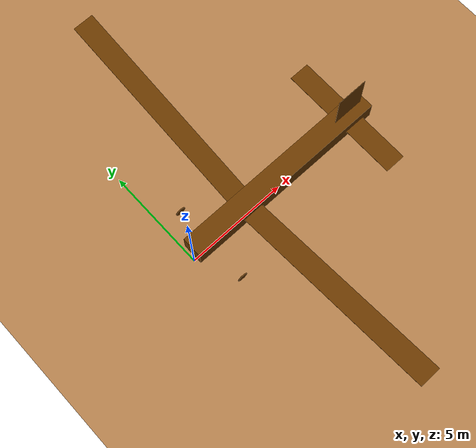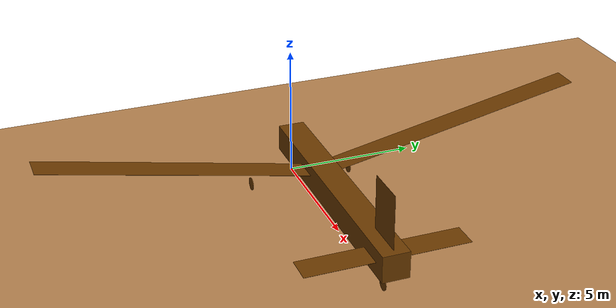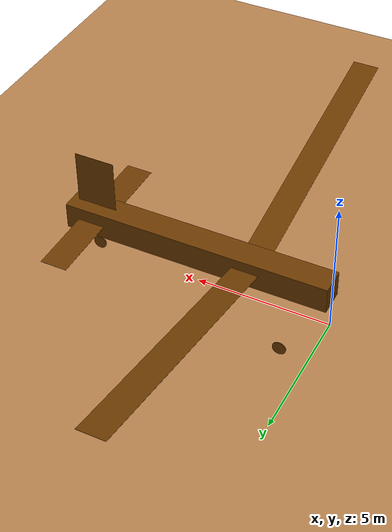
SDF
<?xml version="1.0" ?>
<sdf version="1.4">
  <world name="default">
    <gui>
      <camera name="user_camera">
        <pose>20 0 3 0 0 3.141592</pose>
      </camera>
    </gui>
    <physics type="ode">
      <gravity>0.0 0.0 -10.00</gravity>
      <ode>
        <solver>
          <type>quick</type>
          <iters>100</iters>
          <sor>0.8</sor>
        </solver>
        <constraints>
          <cfm>0.0</cfm>
          <erp>0.2</erp>
          <contact_max_correcting_vel>0.1</contact_max_correcting_vel>
          <contact_surface_layer>0.0</contact_surface_layer>
        </constraints>
      </ode>
      <real_time_update_rate>1000</real_time_update_rate>
      <max_step_size>0.001</max_step_size>
    </physics>
    <include>
      <uri>model://sun</uri>
    </include>

    <spherical_coordinates>
      <latitude_deg>43.530824</latitude_deg>
      <longitude_deg>-80.577673</longitude_deg>
      <heading_deg>0</heading_deg>
    </spherical_coordinates>

    <model name="ground_plane">
      <static>true</static>
      <link name="link">
        <collision name="collision">
          <geometry>
            <plane>
              <normal>0 0 1</normal>
              <size>10000 10000</size>
            </plane>
          </geometry>
          <surface>
            <friction>
              <ode>
                <mu>1</mu>
                <mu2>1</mu2>
              </ode>
            </friction>
          </surface>
        </collision>
        <visual name="visual">
          <cast_shadows>false</cast_shadows>
          <geometry>
            <plane>
              <normal>0 0 1</normal>
              <size>10000 10000</size>
            </plane>
          </geometry>
          <material>
            <script>
              <uri>file://media/materials/scripts/gazebo.material</uri>
              <name>Gazebo/WoodFloor</name>
            </script>
          </material>
        </visual>
      </link>
    </model>

    <model name="lift_drag_demo_model">
      <pose>0 0 0 0 0 0</pose>
      <static>false</static>
      <link name="body">
        <pose>5.0 0 1.5 0 0 0</pose>
        <inertial>
          <pose>-1.5 0.0 0.0 0.0 0.0 0.0</pose>
          <inertia>
            <ixx>5.8</ixx>
            <ixy>0.0</ixy>
            <ixz>0.0</ixz>
            <iyy>10.8</iyy>
            <iyz>0.0</iyz>
            <izz>10.8</izz>
          </inertia>
          <mass>200.0</mass>
        </inertial>
        <collision name="collision">
          <geometry>
            <box>
              <size>10 1 1</size>
            </box>
          </geometry>
          <surface>
            <friction>
              <ode>
                <mu>0.3</mu>
                <mu2>0.3</mu2>
              </ode>
            </friction>
          </surface>
        </collision>
        <visual name="visual">
          <geometry>
            <box>
              <size>10 1 1</size>
            </box>
          </geometry>
          <material>
            <ambient>0.2 0.2 0.2 1.0</ambient>
            <diffuse>.421 0.225 0.0 1.0</diffuse>
          </material>
        </visual>
        <sensor name="camera" type="camera">
          <pose>18 0 0.0 0 0.0 3.1416</pose>
          <camera>
            <horizontal_fov>1.347</horizontal_fov>
            <image>
              <width>640</width>
              <height>480</height>
            </image>
            <clip>
              <near>0.1</near>
              <far>1000</far>
            </clip>
          </camera>
          <always_on>1</always_on>
          <update_rate>30</update_rate>
          <visualize>true</visualize>
        </sensor>
        <sensor name="camera_wide" type="camera">
          <pose>16 0 2.0 0 0.3 3.1416</pose>
          <camera>
            <horizontal_fov>2.0</horizontal_fov>
            <image>
              <width>640</width>
              <height>480</height>
            </image>
            <clip>
              <near>0.1</near>
              <far>1000</far>
            </clip>
          </camera>
          <always_on>1</always_on>
          <update_rate>30</update_rate>
          <visualize>true</visualize>
        </sensor>
        <sensor name='Vilma_IMU' type='imu'>
          <pose>0 0.000000 0.5 0.000000 -0.000000 0.000000</pose>
          <imu>
            <topic>__default_topic__</topic>
          </imu>
          <always_on>1</always_on>
          <update_rate>30</update_rate>
        </sensor>
        <sensor name='gps' type='gps'>
          <pose>0 0.000000 0.5 0.000000 -0.000000 0.000000</pose>
          <gps>
            <topic>__default_topic__</topic>
          </gps>
          <always_on>1</always_on>
          <update_rate>30</update_rate>
        </sensor>
      </link>
      <link name="wheel_1">
        <pose>9.0 0 0.25 1.57079 0 0</pose>
        <inertial>
          <pose>0.0 0.0 0.0 0.0 0.0 0.0</pose>
          <inertia>
            <ixx>0.8</ixx>
            <ixy>0.0</ixy>
            <ixz>0.0</ixz>
            <iyy>0.8</iyy>
            <iyz>0.0</iyz>
            <izz>0.8</izz>
          </inertia>
          <mass>10.0</mass>
        </inertial>
        <collision name="collision">
          <geometry>
            <cylinder>
              <radius>0.25</radius>
              <length>0.03</length>
            </cylinder>
          </geometry>
          <surface>
            <friction>
              <ode>
                <mu>0.3</mu>
                <mu2>0.3</mu2>
              </ode>
            </friction>
          </surface>
        </collision>
        <visual name="visual">
          <geometry>
            <cylinder>
              <radius>0.25</radius>
              <length>0.03</length>
            </cylinder>
          </geometry>
          <material>
            <ambient>0.2 0.2 0.2 1.0</ambient>
            <diffuse>.421 0.225 0.0 1.0</diffuse>
          </material>
        </visual>
      </link>
      <link name="wheel_2">
        <pose>1.0 -2.0 0.25 1.57079 0 0</pose>
        <inertial>
          <pose>0.0 0.0 0.0 0.0 0.0 0.0</pose>
          <inertia>
            <ixx>0.8</ixx>
            <ixy>0.0</ixy>
            <ixz>0.0</ixz>
            <iyy>0.8</iyy>
            <iyz>0.0</iyz>
            <izz>0.8</izz>
          </inertia>
          <mass>10.0</mass>
        </inertial>
        <collision name="collision">
          <geometry>
            <cylinder>
              <radius>0.25</radius>
              <length>0.03</length>
            </cylinder>
          </geometry>
          <surface>
            <friction>
              <ode>
                <mu>0.3</mu>
                <mu2>0.3</mu2>
              </ode>
            </friction>
          </surface>
        </collision>
        <visual name="visual">
          <geometry>
            <cylinder>
              <radius>0.25</radius>
              <length>0.03</length>
            </cylinder>
          </geometry>
          <material>
            <ambient>0.2 0.2 0.2 1.0</ambient>
            <diffuse>.421 0.225 0.0 1.0</diffuse>
          </material>
        </visual>
      </link>
      <link name="wheel_3">
        <pose>1.0 2.0 0.25 1.57079 0 0</pose>
        <inertial>
          <pose>0.0 0.0 0.0 0.0 0.0 0.0</pose>
          <inertia>
            <ixx>0.8</ixx>
            <ixy>0.0</ixy>
            <ixz>0.0</ixz>
            <iyy>0.8</iyy>
            <iyz>0.0</iyz>
            <izz>0.8</izz>
          </inertia>
          <mass>10.0</mass>
        </inertial>
        <collision name="collision">
          <geometry>
            <cylinder>
              <radius>0.25</radius>
              <length>0.03</length>
            </cylinder>
          </geometry>
          <surface>
            <friction>
              <ode>
                <mu>0.3</mu>
                <mu2>0.3</mu2>
              </ode>
            </friction>
          </surface>
        </collision>
        <visual name="visual">
          <geometry>
            <cylinder>
              <radius>0.25</radius>
              <length>0.03</length>
            </cylinder>
          </geometry>
          <material>
            <ambient>0.2 0.2 0.2 1.0</ambient>
            <diffuse>.421 0.225 0.0 1.0</diffuse>
          </material>
        </visual>
      </link>

      <joint name="wheel_1_joint" type="revolute">
        <parent>body</parent>
        <child>wheel_1</child>
        <pose>0.0 0.0 0.0 0.0 0.0 0.0</pose>
        <axis>
          <limit>
            <lower>-1e16</lower>
            <upper>1e16</upper>
          </limit>
          <xyz>0.0 1.0 0.0</xyz>
          <dynamics>
            <damping>0.0001</damping>
          </dynamics>
        </axis>
        <physics>
          <ode>
            <implicit_spring_damper>1</implicit_spring_damper>
          </ode>
        </physics>
      </joint>
      <joint name="wheel_2_joint" type="revolute">
        <parent>body</parent>
        <child>wheel_2</child>
        <pose>0.0 0.0 0.0 0.0 0.0 0.0</pose>
        <axis>
          <limit>
            <lower>-1e16</lower>
            <upper>1e16</upper>
          </limit>
          <xyz>0.0 1.0 0.0</xyz>
          <dynamics>
            <damping>0.0001</damping>
          </dynamics>
        </axis>
        <physics>
          <ode>
            <implicit_spring_damper>1</implicit_spring_damper>
          </ode>
        </physics>
      </joint>
      <joint name="wheel_3_joint" type="revolute">
        <parent>body</parent>
        <child>wheel_3</child>
        <pose>0.0 0.0 0.0 0.0 0.0 0.0</pose>
        <axis>
          <limit>
            <lower>-1e16</lower>
            <upper>1e16</upper>
          </limit>
          <xyz>0.0 1.0 0.0</xyz>
          <dynamics>
            <damping>0.0001</damping>
          </dynamics>
        </axis>
        <physics>
          <ode>
            <implicit_spring_damper>1</implicit_spring_damper>
          </ode>
        </physics>
      </joint>

      <link name="wing_right">
        <pose>3 0 1.5 0.2 0 0</pose>
        <inertial>
          <pose>0.0 5.5 0 0.0 0.0 0.0</pose>
          <inertia>
            <ixx>0.465</ixx>
            <ixy>0.0</ixy>
            <ixz>0.0</ixz>
            <iyy>0.006</iyy>
            <iyz>0.0</iyz>
            <izz>0.470</izz>
          </inertia>
          <mass>10.0</mass>
        </inertial>
        <collision name="collision">
          <pose>0.0 5.5 0 0.0 0.0 0.0</pose>
          <geometry>
            <box>
              <size>1.0 10.0 0.01</size>
            </box>
          </geometry>
        </collision>
        <visual name="visual">
          <pose>0.0 5.5 0 0.0 0.0 0.0</pose>
          <geometry>
            <box>
              <size>1.0 10.0 0.01</size>
            </box>
          </geometry>
          <material>
            <ambient>0.5 0.2 0.2 1.0</ambient>
            <diffuse>.421 0.225 0.0 1.0</diffuse>
          </material>
        </visual>
      </link>
      <link name="wing_left">
        <pose>3 0 1.5 -0.2 0 0</pose>
        <inertial>
          <pose>0.0 -5.5 0 0.0 0.0 0.0</pose>
          <inertia>
            <ixx>0.465</ixx>
            <ixy>0.0</ixy>
            <ixz>0.0</ixz>
            <iyy>0.006</iyy>
            <iyz>0.0</iyz>
            <izz>0.470</izz>
          </inertia>
          <mass>10.0</mass>
        </inertial>
        <collision name="collision">
          <pose>0.0 -5.5 0 0.0 0.0 0.0</pose>
          <geometry>
            <box>
              <size>1.0 10.0 0.01</size>
            </box>
          </geometry>
        </collision>
        <visual name="visual">
          <pose>0.0 -5.5 0 0.0 0.0 0</pose>
          <geometry>
            <box>
              <size>1.0 10.0 0.01</size>
            </box>
          </geometry>
          <material>
            <ambient>0.2 0.5 0.2 1.0</ambient>
            <diffuse>.421 0.225 0.0 1.0</diffuse>
          </material>
        </visual>
      </link>
      <joint name="wing_right_joint" type="revolute">
        <parent>body</parent>
        <child>wing_right</child>
        <pose>0.0 0.0 0.0 0.0 0.0 0.0</pose>
        <axis>
          <limit>
            <lower>-0.3</lower>
            <upper>0.3</upper>
          </limit>
          <xyz>0.0 0.98 0.198669</xyz>
          <dynamics>
            <damping>5.000000</damping>
          </dynamics>
        </axis>
        <physics>
          <ode>
            <implicit_spring_damper>1</implicit_spring_damper>
          </ode>
        </physics>
      </joint>
      <joint name="wing_left_joint" type="revolute">
        <parent>body</parent>
        <child>wing_left</child>
        <pose>0.0 0.0 0.0 0.0 0.0 0.0</pose>
        <axis>
          <limit>
            <lower>-0.3</lower>
            <upper>0.3</upper>
          </limit>
          <xyz>0.0 -0.98 0.198669</xyz>
          <dynamics>
            <damping>5.000000</damping>
          </dynamics>
        </axis>
        <physics>
          <ode>
            <implicit_spring_damper>1</implicit_spring_damper>
          </ode>
        </physics>
      </joint>

      <link name="elevator">
        <pose>9 0 1.5 0 0 0</pose>
        <inertial>
          <pose>0.0 0.0 0 0.0 0.0 0.0</pose>
          <inertia>
            <ixx>0.0465</ixx>
            <ixy>0.0</ixy>
            <ixz>0.0</ixz>
            <iyy>0.0006</iyy>
            <iyz>0.0</iyz>
            <izz>0.0470</izz>
          </inertia>
          <mass>4.0</mass>
        </inertial>
        <collision name="collision">
          <pose>0.0 0.0 0 0.0 0.0 0.0</pose>
          <geometry>
            <box>
              <size>1.0 6.0 0.01</size>
            </box>
          </geometry>
        </collision>
        <visual name="visual">
          <pose>0.0 0.0 0 0.0 0.0 0.0</pose>
          <geometry>
            <box>
              <size>1.0 6.0 0.01</size>
            </box>
          </geometry>
          <material>
            <ambient>0.5 0.2 0.2 1.0</ambient>
            <diffuse>.421 0.225 0.0 1.0</diffuse>
          </material>
        </visual>
      </link>
      <joint name="elevator_joint" type="revolute">
        <parent>body</parent>
        <child>elevator</child>
        <pose>0.0 0.0 0.0 0.0 0.0 0.0</pose>
        <axis>
          <limit>
            <lower>-0.5</lower>
            <upper>0.5</upper>
          </limit>
          <xyz>0.0 1.0 0.0</xyz>
          <dynamics>
            <damping>5.000000</damping>
          </dynamics>
        </axis>
        <physics>
          <ode>
            <implicit_spring_damper>1</implicit_spring_damper>
          </ode>
        </physics>
      </joint>

      <link name="rudder">
        <pose>9 0 2.0 0 0 0</pose>
        <inertial>
          <pose>0.0 0 1 0.0 0.0 0.0</pose>
          <inertia>
            <ixx>0.0465</ixx>
            <ixy>0.0</ixy>
            <ixz>0.0</ixz>
            <iyy>0.0006</iyy>
            <iyz>0.0</iyz>
            <izz>0.0470</izz>
          </inertia>
          <mass>2.0</mass>
        </inertial>
        <collision name="collision">
          <pose>0.0 0 1 0.0 0.0 0.0</pose>
          <geometry>
            <box>
              <size>1.5 0.01 2.0</size>
            </box>
          </geometry>
        </collision>
        <visual name="visual">
          <pose>0.0 0 1 0.0 0.0 0</pose>
          <geometry>
            <box>
              <size>1.5 0.01 2.0</size>
            </box>
          </geometry>
          <material>
            <ambient>0.2 0.5 0.2 1.0</ambient>
            <diffuse>.421 0.225 0.0 1.0</diffuse>
          </material>
        </visual>
      </link>
      <joint name="rudder_joint" type="revolute">
        <parent>body</parent>
        <child>rudder</child>
        <pose>0.0 0.0 0.0 0.0 0.0 0.0</pose>
        <axis>
          <limit>
            <lower>-0.3</lower>
            <upper>0.3</upper>
          </limit>
          <xyz>0.0 0.0 1.0</xyz>
          <dynamics>
            <damping>5.000000</damping>
          </dynamics>
        </axis>
        <physics>
          <ode>
            <implicit_spring_damper>1</implicit_spring_damper>
          </ode>
        </physics>
      </joint>

      <plugin name="gazebo_wing_right" filename="libLiftDragPlugin.so">
        <a0>0.1</a0>
        <cla>4.000</cla>
        <cda>0.001</cda>
        <cma>0.00</cma>
        <alpha_stall>1.0</alpha_stall>
        <cla_stall>-1.0</cla_stall>
        <cda_stall>0.00</cda_stall>
        <cma_stall>0.0</cma_stall>
        <cp>0.0 5.0 0</cp>
        <area>10</area>
        <air_density>1.2041</air_density>
        <forward>-1 0 0</forward>
        <upward>0 0 1</upward>
        <link_name>lift_drag_demo_model::wing_right</link_name>
      </plugin>
      <plugin name="gazebo_wing_left" filename="libLiftDragPlugin.so">
        <a0>0.1</a0>
        <cla>4.000</cla>
        <cda>0.001</cda>
        <cma>0.00</cma>
        <alpha_stall>1.0</alpha_stall>
        <cla_stall>-1.0</cla_stall>
        <cda_stall>0.0</cda_stall>
        <cma_stall>0.0</cma_stall>
        <cp>0.0 -5.0 0</cp>
        <area>10</area>
        <air_density>1.2041</air_density>
        <forward>-1 0 0</forward>
        <upward>0 0 1</upward>
        <link_name>lift_drag_demo_model::wing_left</link_name>
      </plugin>
      <plugin name="gazebo_elevator_right" filename="libLiftDragPlugin.so">
        <a0>0.02</a0>
        <cla>4.000</cla>
        <cda>0.001</cda>
        <cma>0.00</cma>
        <alpha_stall>1.0</alpha_stall>
        <cla_stall>-1.0</cla_stall>
        <cda_stall>0.0</cda_stall>
        <cma_stall>0.0</cma_stall>
        <cp>0.0 1.5 0</cp>
        <area>3</area>
        <air_density>1.2041</air_density>
        <forward>-1 0 0</forward>
        <upward>0 0 1</upward>
        <link_name>lift_drag_demo_model::elevator</link_name>
      </plugin>
      <plugin name="gazebo_elevator_left" filename="libLiftDragPlugin.so">
        <a0>0.02</a0>
        <cla>4.000</cla>
        <cda>0.001</cda>
        <cma>0.00</cma>
        <alpha_stall>1.0</alpha_stall>
        <cla_stall>-1.0</cla_stall>
        <cda_stall>0.0</cda_stall>
        <cma_stall>0.0</cma_stall>
        <cp>0.0 -1.5 0</cp>
        <area>3</area>
        <air_density>1.2041</air_density>
        <forward>-1 0 0</forward>
        <upward>0 0 1</upward>
        <link_name>lift_drag_demo_model::elevator</link_name>
      </plugin>
      <plugin name="gazebo_rudder" filename="libLiftDragPlugin.so">
        <!-- force turn -->
        <a0>0.00</a0>
        <cla>2.000</cla>
        <cda>0.001</cda>
        <cma>0.00</cma>
        <alpha_stall>1.0</alpha_stall>
        <cla_stall>-1.0</cla_stall>
        <cda_stall>0.0</cda_stall>
        <cma_stall>0.0</cma_stall>
        <cp>0.0 0 1</cp>
        <area>3</area>
        <air_density>1.2041</air_density>
        <forward>-1 0 0</forward>
        <upward>0 -1 0</upward>
        <link_name>lift_drag_demo_model::rudder</link_name>
      </plugin>
      <plugin name="plane_demo_plugin" filename="libPlaneDemoPlugin.so">
        <thruster name="thruster1">
          <link_name>body</link_name>
          <inc_key>97</inc_key>
          <dec_key>122</dec_key>
          <inc_val>-50 0 0</inc_val>
        </thruster>
        <control name="wing_left_control">
          <joint_name>wing_left_joint</joint_name>
          <inc_key>67</inc_key>
          <inc_val>-0.02</inc_val>
          <dec_key>68</dec_key>
          <p>1000</p>
          <i>0</i>
          <d>0</d>
        </control>
        <control name="wing_right_control">
          <joint_name>wing_right_joint</joint_name>
          <inc_key>68</inc_key>
          <inc_val>0.02</inc_val>
          <dec_key>67</dec_key>
          <p>1000</p>
          <i>0</i>
          <d>0</d>
        </control>
        <control name="elevator_control">
          <joint_name>elevator_joint</joint_name>
          <inc_key>65</inc_key>
          <inc_val>0.02</inc_val>
          <dec_key>66</dec_key>
          <p>100</p>
          <i>0</i>
          <d>0</d>
        </control>
        <control name="rudder_control">
          <joint_name>rudder_joint</joint_name>
          <inc_key>119</inc_key>
          <inc_val>0.02</inc_val>
          <dec_key>113</dec_key>
          <p>100</p>
          <i>0</i>
          <d>0</d>
        </control>
      </plugin>

    </model>
  </world>
</sdf>
